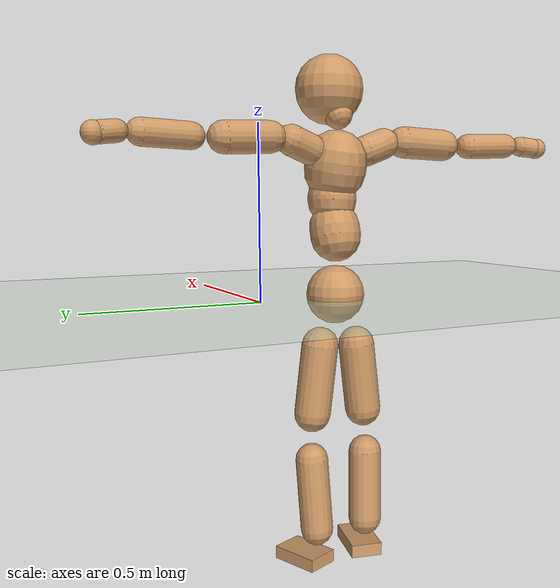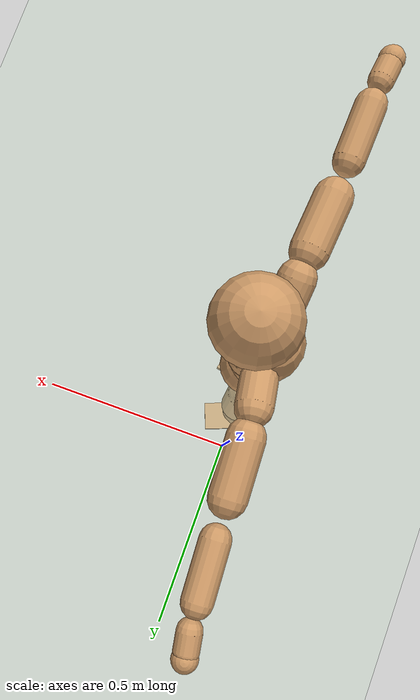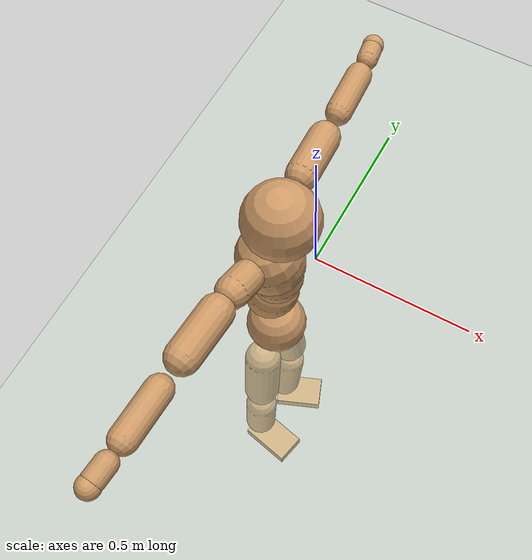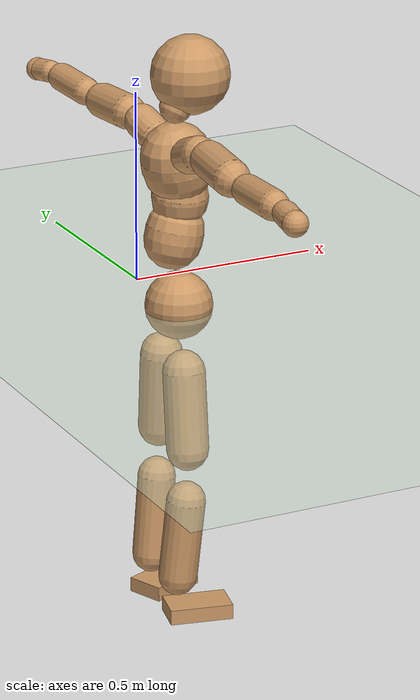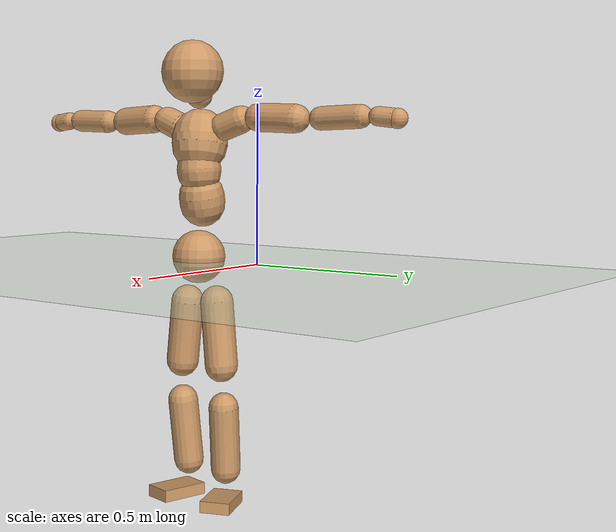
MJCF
<mujoco model="humanoid">
  <compiler coordinate="local" angle="radian"/>
  <default>
    <joint damping="0.0" armature="0.01" stiffness="0.0" limited="true"/>
    <geom conaffinity="1" condim="3" contype="7" margin="0.001" rgba="0.8 0.6 .4 1"/>
  </default>
  <asset>
    <texture type="skybox" builtin="gradient" rgb1=".4 .5 .6" rgb2="0 0 0" width="100" height="100"/>
    <texture builtin="flat" height="1278" mark="cross" markrgb="1 1 1" name="texgeom" random="0.01" rgb1="0.8 0.6 0.4" rgb2="0.8 0.6 0.4" type="cube" width="127"/>
    <texture builtin="checker" height="100" name="texplane" rgb1="0 0 0" rgb2="0.8 0.8 0.8" type="2d" width="100"/>
    <material name="MatPlane" reflectance="0.5" shininess="1" specular="1" texrepeat="60 60" texture="texplane"/>
    <material name="geom" texture="texgeom" texuniform="true"/>
  </asset>
  <worldbody>
    <light cutoff="100" diffuse="1 1 1" dir="-0 0 -1.3" directional="true" exponent="1" pos="0 0 1.3" specular=".1 .1 .1"/>
    <geom conaffinity="1" condim="3" name="floor" pos="0 0 0" rgba="0.8 0.9 0.8 1" size="100 100 .2" type="plane" material="MatPlane"/>
    <body name="Pelvis" pos="0.0004 -0.2403 0.0114">
      <freejoint name="Pelvis"/>
      <geom type="sphere" contype="1" conaffinity="1" density="500" size="0.0867" pos="0.0000 0.0000 0.0000" name="Pelvis"/>
      <body name="L_Hip" pos="-0.0203 0.0531 -0.078">
        <joint name="L_Hip_x" type="hinge" pos="0 0 0" axis="1 0 0" stiffness="800" damping="80" armature="0.02" range="-180.0000 180.0000"/>
        <joint name="L_Hip_y" type="hinge" pos="0 0 0" axis="0 1 0" stiffness="800" damping="80" armature="0.02" range="-180.0000 180.0000"/>
        <joint name="L_Hip_z" type="hinge" pos="0 0 0" axis="0 0 1" stiffness="800" damping="80" armature="0.02" range="-180.0000 180.0000"/>
        <geom type="capsule" contype="1" conaffinity="1" density="500" fromto="0.0015 0.0077 -0.0691 0.0062 0.0309 -0.2763" size="0.0542" name="L_Hip"/>
        <body name="L_Knee" pos="0.0077 0.0386 -0.3454">
          <joint name="L_Knee_x" type="hinge" pos="0 0 0" axis="1 0 0" stiffness="800" damping="80" armature="0.02" range="-180.0000 180.0000"/>
          <joint name="L_Knee_y" type="hinge" pos="0 0 0" axis="0 1 0" stiffness="800" damping="80" armature="0.02" range="-180.0000 180.0000"/>
          <joint name="L_Knee_z" type="hinge" pos="0 0 0" axis="0 0 1" stiffness="800" damping="80" armature="0.02" range="-180.0000 180.0000"/>
          <geom type="capsule" contype="1" conaffinity="1" density="500" fromto="-0.0067 -0.0023 -0.0709 -0.0267 -0.0091 -0.2836" size="0.0489" name="L_Knee"/>
          <body name="L_Ankle" pos="-0.0333 -0.0114 -0.3545">
            <joint name="L_Ankle_x" type="hinge" pos="0 0 0" axis="1 0 0" stiffness="800" damping="80" armature="0.02" range="-180.0000 180.0000"/>
            <joint name="L_Ankle_y" type="hinge" pos="0 0 0" axis="0 1 0" stiffness="800" damping="80" armature="0.02" range="-180.0000 180.0000"/>
            <joint name="L_Ankle_z" type="hinge" pos="0 0 0" axis="0 0 1" stiffness="800" damping="80" armature="0.02" range="-180.0000 180.0000"/>
            <geom type="box" contype="1" conaffinity="1" density="500" pos="0.0537 0.0214 -0.0264" size="0.0754 0.0493 0.019" quat="0.9821 0.0000 0.0000 0.1883" name="L_Ankle"/>
            <body name="L_Toe" pos="0.1074 0.0427 -0.0529">
              <joint name="L_Toe_x" type="hinge" pos="0 0 0" axis="1 0 0" stiffness="500" damping="50" armature="0.02" range="-180.0000 180.0000"/>
              <joint name="L_Toe_y" type="hinge" pos="0 0 0" axis="0 1 0" stiffness="500" damping="50" armature="0.02" range="-180.0000 180.0000"/>
              <joint name="L_Toe_z" type="hinge" pos="0 0 0" axis="0 0 1" stiffness="500" damping="50" armature="0.02" range="-180.0000 180.0000"/>
              <geom type="box" contype="1" conaffinity="1" density="500" pos="0.0000 0.0000 0.0275" size="0.001 0.0023 0.001" quat="0.9812 0.0000 0.0000 0.1929" name="L_Toe"/>
            </body>
          </body>
        </body>
      </body>
      <body name="R_Hip" pos="-0.0168 -0.0553 -0.0859">
        <joint name="R_Hip_x" type="hinge" pos="0 0 0" axis="1 0 0" stiffness="800" damping="80" armature="0.02" range="-180.0000 180.0000"/>
        <joint name="R_Hip_y" type="hinge" pos="0 0 0" axis="0 1 0" stiffness="800" damping="80" armature="0.02" range="-180.0000 180.0000"/>
        <joint name="R_Hip_z" type="hinge" pos="0 0 0" axis="0 0 1" stiffness="800" damping="80" armature="0.02" range="-180.0000 180.0000"/>
        <geom type="capsule" contype="1" conaffinity="1" density="500" fromto="-0.0005 -0.0079 -0.0677 -0.0018 -0.0315 -0.2708" size="0.054" name="R_Hip"/>
        <body name="R_Knee" pos="-0.0023 -0.0393 -0.3384">
          <joint name="R_Knee_x" type="hinge" pos="0 0 0" axis="1 0 0" stiffness="800" damping="80" armature="0.02" range="-180.0000 180.0000"/>
          <joint name="R_Knee_y" type="hinge" pos="0 0 0" axis="0 1 0" stiffness="800" damping="80" armature="0.02" range="-180.0000 180.0000"/>
          <joint name="R_Knee_z" type="hinge" pos="0 0 0" axis="0 0 1" stiffness="800" damping="80" armature="0.02" range="-180.0000 180.0000"/>
          <geom type="capsule" contype="1" conaffinity="1" density="500" fromto="-0.0062 0.0030 -0.0696 -0.0249 0.0122 -0.2783" size="0.05" name="R_Knee"/>
          <body name="R_Ankle" pos="-0.0311 0.0152 -0.3478">
            <joint name="R_Ankle_x" type="hinge" pos="0 0 0" axis="1 0 0" stiffness="800" damping="80" armature="0.02" range="-180.0000 180.0000"/>
            <joint name="R_Ankle_y" type="hinge" pos="0 0 0" axis="0 1 0" stiffness="800" damping="80" armature="0.02" range="-180.0000 180.0000"/>
            <joint name="R_Ankle_z" type="hinge" pos="0 0 0" axis="0 0 1" stiffness="800" damping="80" armature="0.02" range="-180.0000 180.0000"/>
            <geom type="box" contype="1" conaffinity="1" density="500" pos="0.0580 -0.0128 -0.0275" size="0.0816 0.0476 0.0196" quat="0.9941 0.0000 0.0000 -0.1083" name="R_Ankle"/>
            <body name="R_Toe" pos="0.1159 -0.0256 -0.0549">
              <joint name="R_Toe_x" type="hinge" pos="0 0 0" axis="1 0 0" stiffness="500" damping="50" armature="0.02" range="-180.0000 180.0000"/>
              <joint name="R_Toe_y" type="hinge" pos="0 0 0" axis="0 1 0" stiffness="500" damping="50" armature="0.02" range="-180.0000 180.0000"/>
              <joint name="R_Toe_z" type="hinge" pos="0 0 0" axis="0 0 1" stiffness="500" damping="50" armature="0.02" range="-180.0000 180.0000"/>
              <geom type="box" contype="1" conaffinity="1" density="500" pos="0.0000 0.0000 0.0300" size="0.0009 0.0023 0.0011" quat="0.9951 0.0000 0.0000 -0.0984" name="R_Toe"/>
            </body>
          </body>
        </body>
      </body>
      <body name="Torso" pos="-0.0259 0.0037 0.1167">
        <joint name="Torso_x" type="hinge" pos="0 0 0" axis="1 0 0" stiffness="1000" damping="100" armature="0.02" range="-180.0000 180.0000"/>
        <joint name="Torso_y" type="hinge" pos="0 0 0" axis="0 1 0" stiffness="1000" damping="100" armature="0.02" range="-180.0000 180.0000"/>
        <joint name="Torso_z" type="hinge" pos="0 0 0" axis="0 0 1" stiffness="1000" damping="100" armature="0.02" range="-180.0000 180.0000"/>
        <geom type="capsule" contype="1" conaffinity="1" density="500" fromto="0.0192 0.0031 0.0829 0.0128 0.0020 0.0553" size="0.074" name="Torso"/>
        <body name="Spine" pos="0.0319 0.0051 0.1381">
          <joint name="Spine_x" type="hinge" pos="0 0 0" axis="1 0 0" stiffness="1000" damping="100" armature="0.02" range="-180.0000 180.0000"/>
          <joint name="Spine_y" type="hinge" pos="0 0 0" axis="0 1 0" stiffness="1000" damping="100" armature="0.02" range="-180.0000 180.0000"/>
          <joint name="Spine_z" type="hinge" pos="0 0 0" axis="0 0 1" stiffness="1000" damping="100" armature="0.02" range="-180.0000 180.0000"/>
          <geom type="capsule" contype="1" conaffinity="1" density="500" fromto="0.0015 -0.0014 0.0331 0.0010 -0.0010 0.0221" size="0.0719" name="Spine"/>
          <body name="Chest" pos="0.0024 -0.0024 0.0552">
            <joint name="Chest_x" type="hinge" pos="0 0 0" axis="1 0 0" stiffness="1000" damping="100" armature="0.02" range="-180.0000 180.0000"/>
            <joint name="Chest_y" type="hinge" pos="0 0 0" axis="0 1 0" stiffness="1000" damping="100" armature="0.02" range="-180.0000 180.0000"/>
            <joint name="Chest_z" type="hinge" pos="0 0 0" axis="0 0 1" stiffness="1000" damping="100" armature="0.02" range="-180.0000 180.0000"/>
            <geom type="capsule" contype="1" conaffinity="1" density="500" fromto="-0.0151 -0.0053 0.0792 -0.0101 -0.0035 0.0528" size="0.0902" name="Chest"/>
            <body name="Neck" pos="-0.0285 -0.0119 0.1924">
              <joint name="Neck_x" type="hinge" pos="0 0 0" axis="1 0 0" stiffness="500" damping="50" armature="0.02" range="-180.0000 180.0000"/>
              <joint name="Neck_y" type="hinge" pos="0 0 0" axis="0 1 0" stiffness="500" damping="50" armature="0.02" range="-180.0000 180.0000"/>
              <joint name="Neck_z" type="hinge" pos="0 0 0" axis="0 0 1" stiffness="500" damping="50" armature="0.02" range="-180.0000 180.0000"/>
              <geom type="capsule" contype="1" conaffinity="1" density="500" fromto="0.0107 0.0018 0.0185 0.0429 0.0070 0.0742" size="0.0418" name="Neck"/>
              <body name="Head" pos="0.0536 0.0088 0.0927">
                <joint name="Head_x" type="hinge" pos="0 0 0" axis="1 0 0" stiffness="500" damping="50" armature="0.02" range="-180.0000 180.0000"/>
                <joint name="Head_y" type="hinge" pos="0 0 0" axis="0 1 0" stiffness="500" damping="50" armature="0.02" range="-180.0000 180.0000"/>
                <joint name="Head_z" type="hinge" pos="0 0 0" axis="0 0 1" stiffness="500" damping="50" armature="0.02" range="-180.0000 180.0000"/>
                <geom type="sphere" contype="1" conaffinity="1" density="500" size="0.1000" pos="0.0000 0.0000 0.0000" name="Head"/>
              </body>
            </body>
            <body name="L_Thorax" pos="-0.0226 0.0612 0.1014">
              <joint name="L_Thorax_x" type="hinge" pos="0 0 0" axis="1 0 0" stiffness="500" damping="50" armature="0.02" range="-180.0000 180.0000"/>
              <joint name="L_Thorax_y" type="hinge" pos="0 0 0" axis="0 1 0" stiffness="500" damping="50" armature="0.02" range="-180.0000 180.0000"/>
              <joint name="L_Thorax_z" type="hinge" pos="0 0 0" axis="0 0 1" stiffness="500" damping="50" armature="0.02" range="-180.0000 180.0000"/>
              <geom type="capsule" contype="1" conaffinity="1" density="500" fromto="-0.0031 0.0214 0.0077 -0.0123 0.0856 0.0309" size="0.0442" name="L_Thorax"/>
              <body name="L_Shoulder" pos="-0.0154 0.107 0.0387">
                <joint name="L_Shoulder_x" type="hinge" pos="0 0 0" axis="1 0 0" stiffness="500" damping="50" armature="0.02" range="-720.0000 720.0000"/>
                <joint name="L_Shoulder_y" type="hinge" pos="0 0 0" axis="0 1 0" stiffness="500" damping="50" armature="0.02" range="-720.0000 720.0000"/>
                <joint name="L_Shoulder_z" type="hinge" pos="0 0 0" axis="0 0 1" stiffness="500" damping="50" armature="0.02" range="-720.0000 720.0000"/>
                <geom type="capsule" contype="1" conaffinity="1" density="500" fromto="-0.0022 0.0452 -0.0019 -0.0088 0.1807 -0.0076" size="0.0448" name="L_Shoulder"/>
                <body name="L_Elbow" pos="-0.011 0.2259 -0.0095">
                  <joint name="L_Elbow_x" type="hinge" pos="0 0 0" axis="1 0 0" stiffness="500" damping="50" armature="0.02" range="-720.0000 720.0000"/>
                  <joint name="L_Elbow_y" type="hinge" pos="0 0 0" axis="0 1 0" stiffness="500" damping="50" armature="0.02" range="-720.0000 720.0000"/>
                  <joint name="L_Elbow_z" type="hinge" pos="0 0 0" axis="0 0 1" stiffness="500" damping="50" armature="0.02" range="-720.0000 720.0000"/>
                  <geom type="capsule" contype="1" conaffinity="1" density="500" fromto="-0.0024 0.0446 0.0014 -0.0096 0.1786 0.0055" size="0.0362" name="L_Elbow"/>
                  <body name="L_Wrist" pos="-0.0121 0.2232 0.0069">
                    <joint name="L_Wrist_x" type="hinge" pos="0 0 0" axis="1 0 0" stiffness="300" damping="30" armature="0.02" range="-180.0000 180.0000"/>
                    <joint name="L_Wrist_y" type="hinge" pos="0 0 0" axis="0 1 0" stiffness="300" damping="30" armature="0.02" range="-180.0000 180.0000"/>
                    <joint name="L_Wrist_z" type="hinge" pos="0 0 0" axis="0 0 1" stiffness="300" damping="30" armature="0.02" range="-180.0000 180.0000"/>
                    <geom type="capsule" contype="1" conaffinity="1" density="500" fromto="-0.0026 0.0146 -0.0018 -0.0104 0.0585 -0.0071" size="0.0292" name="L_Wrist"/>
                    <body name="L_Hand" pos="-0.013 0.0731 -0.0089">
                      <joint name="L_Hand_x" type="hinge" pos="0 0 0" axis="1 0 0" stiffness="300" damping="30" armature="0.02" range="-180.0000 180.0000"/>
                      <joint name="L_Hand_y" type="hinge" pos="0 0 0" axis="0 1 0" stiffness="300" damping="30" armature="0.02" range="-180.0000 180.0000"/>
                      <joint name="L_Hand_z" type="hinge" pos="0 0 0" axis="0 0 1" stiffness="300" damping="30" armature="0.02" range="-180.0000 180.0000"/>
                      <geom type="sphere" contype="1" conaffinity="1" density="500" size="0.0302" pos="0.0000 0.0000 0.0000" name="L_Hand"/>
                    </body>
                  </body>
                </body>
              </body>
            </body>
            <body name="R_Thorax" pos="-0.0244 -0.0756 0.102">
              <joint name="R_Thorax_x" type="hinge" pos="0 0 0" axis="1 0 0" stiffness="500" damping="50" armature="0.02" range="-180.0000 180.0000"/>
              <joint name="R_Thorax_y" type="hinge" pos="0 0 0" axis="0 1 0" stiffness="500" damping="50" armature="0.02" range="-180.0000 180.0000"/>
              <joint name="R_Thorax_z" type="hinge" pos="0 0 0" axis="0 0 1" stiffness="500" damping="50" armature="0.02" range="-180.0000 180.0000"/>
              <geom type="capsule" contype="1" conaffinity="1" density="500" fromto="-0.0012 -0.0202 0.0077 -0.0047 -0.0809 0.0309" size="0.0452" name="R_Thorax"/>
              <body name="R_Shoulder" pos="-0.0059 -0.1011 0.0386">
                <joint name="R_Shoulder_x" type="hinge" pos="0 0 0" axis="1 0 0" stiffness="500" damping="50" armature="0.02" range="-720.0000 720.0000"/>
                <joint name="R_Shoulder_y" type="hinge" pos="0 0 0" axis="0 1 0" stiffness="500" damping="50" armature="0.02" range="-720.0000 720.0000"/>
                <joint name="R_Shoulder_z" type="hinge" pos="0 0 0" axis="0 0 1" stiffness="500" damping="50" armature="0.02" range="-720.0000 720.0000"/>
                <geom type="capsule" contype="1" conaffinity="1" density="500" fromto="-0.0037 -0.0457 -0.0018 -0.0146 -0.1827 -0.0073" size="0.0466" name="R_Shoulder"/>
                <body name="R_Elbow" pos="-0.0183 -0.2284 -0.0092">
                  <joint name="R_Elbow_x" type="hinge" pos="0 0 0" axis="1 0 0" stiffness="500" damping="50" armature="0.02" range="-720.0000 720.0000"/>
                  <joint name="R_Elbow_y" type="hinge" pos="0 0 0" axis="0 1 0" stiffness="500" damping="50" armature="0.02" range="-720.0000 720.0000"/>
                  <joint name="R_Elbow_z" type="hinge" pos="0 0 0" axis="0 0 1" stiffness="500" damping="50" armature="0.02" range="-720.0000 720.0000"/>
                  <geom type="capsule" contype="1" conaffinity="1" density="500" fromto="-0.0016 -0.0468 0.0018 -0.0063 -0.1873 0.0070" size="0.0378" name="R_Elbow"/>
                  <body name="R_Wrist" pos="-0.0079 -0.2341 0.0088">
                    <joint name="R_Wrist_x" type="hinge" pos="0 0 0" axis="1 0 0" stiffness="300" damping="30" armature="0.02" range="-180.0000 180.0000"/>
                    <joint name="R_Wrist_y" type="hinge" pos="0 0 0" axis="0 1 0" stiffness="300" damping="30" armature="0.02" range="-180.0000 180.0000"/>
                    <joint name="R_Wrist_z" type="hinge" pos="0 0 0" axis="0 0 1" stiffness="300" damping="30" armature="0.02" range="-180.0000 180.0000"/>
                    <geom type="capsule" contype="1" conaffinity="1" density="500" fromto="-0.0017 -0.0155 -0.0015 -0.0069 -0.0620 -0.0058" size="0.0308" name="R_Wrist"/>
                    <body name="R_Hand" pos="-0.0086 -0.0776 -0.0073">
                      <joint name="R_Hand_x" type="hinge" pos="0 0 0" axis="1 0 0" stiffness="300" damping="30" armature="0.02" range="-180.0000 180.0000"/>
                      <joint name="R_Hand_y" type="hinge" pos="0 0 0" axis="0 1 0" stiffness="300" damping="30" armature="0.02" range="-180.0000 180.0000"/>
                      <joint name="R_Hand_z" type="hinge" pos="0 0 0" axis="0 0 1" stiffness="300" damping="30" armature="0.02" range="-180.0000 180.0000"/>
                      <geom type="sphere" contype="1" conaffinity="1" density="500" size="0.0317" pos="0.0000 0.0000 0.0000" name="R_Hand"/>
                    </body>
                  </body>
                </body>
              </body>
            </body>
          </body>
        </body>
      </body>
    </body>
  </worldbody>
  <actuator>
    <motor name="L_Hip_x" joint="L_Hip_x" gear="500"/>
    <motor name="L_Hip_y" joint="L_Hip_y" gear="500"/>
    <motor name="L_Hip_z" joint="L_Hip_z" gear="500"/>
    <motor name="L_Knee_x" joint="L_Knee_x" gear="500"/>
    <motor name="L_Knee_y" joint="L_Knee_y" gear="500"/>
    <motor name="L_Knee_z" joint="L_Knee_z" gear="500"/>
    <motor name="L_Ankle_x" joint="L_Ankle_x" gear="500"/>
    <motor name="L_Ankle_y" joint="L_Ankle_y" gear="500"/>
    <motor name="L_Ankle_z" joint="L_Ankle_z" gear="500"/>
    <motor name="L_Toe_x" joint="L_Toe_x" gear="500"/>
    <motor name="L_Toe_y" joint="L_Toe_y" gear="500"/>
    <motor name="L_Toe_z" joint="L_Toe_z" gear="500"/>
    <motor name="R_Hip_x" joint="R_Hip_x" gear="500"/>
    <motor name="R_Hip_y" joint="R_Hip_y" gear="500"/>
    <motor name="R_Hip_z" joint="R_Hip_z" gear="500"/>
    <motor name="R_Knee_x" joint="R_Knee_x" gear="500"/>
    <motor name="R_Knee_y" joint="R_Knee_y" gear="500"/>
    <motor name="R_Knee_z" joint="R_Knee_z" gear="500"/>
    <motor name="R_Ankle_x" joint="R_Ankle_x" gear="500"/>
    <motor name="R_Ankle_y" joint="R_Ankle_y" gear="500"/>
    <motor name="R_Ankle_z" joint="R_Ankle_z" gear="500"/>
    <motor name="R_Toe_x" joint="R_Toe_x" gear="500"/>
    <motor name="R_Toe_y" joint="R_Toe_y" gear="500"/>
    <motor name="R_Toe_z" joint="R_Toe_z" gear="500"/>
    <motor name="Torso_x" joint="Torso_x" gear="500"/>
    <motor name="Torso_y" joint="Torso_y" gear="500"/>
    <motor name="Torso_z" joint="Torso_z" gear="500"/>
    <motor name="Spine_x" joint="Spine_x" gear="500"/>
    <motor name="Spine_y" joint="Spine_y" gear="500"/>
    <motor name="Spine_z" joint="Spine_z" gear="500"/>
    <motor name="Chest_x" joint="Chest_x" gear="500"/>
    <motor name="Chest_y" joint="Chest_y" gear="500"/>
    <motor name="Chest_z" joint="Chest_z" gear="500"/>
    <motor name="Neck_x" joint="Neck_x" gear="500"/>
    <motor name="Neck_y" joint="Neck_y" gear="500"/>
    <motor name="Neck_z" joint="Neck_z" gear="500"/>
    <motor name="Head_x" joint="Head_x" gear="500"/>
    <motor name="Head_y" joint="Head_y" gear="500"/>
    <motor name="Head_z" joint="Head_z" gear="500"/>
    <motor name="L_Thorax_x" joint="L_Thorax_x" gear="500"/>
    <motor name="L_Thorax_y" joint="L_Thorax_y" gear="500"/>
    <motor name="L_Thorax_z" joint="L_Thorax_z" gear="500"/>
    <motor name="L_Shoulder_x" joint="L_Shoulder_x" gear="500"/>
    <motor name="L_Shoulder_y" joint="L_Shoulder_y" gear="500"/>
    <motor name="L_Shoulder_z" joint="L_Shoulder_z" gear="500"/>
    <motor name="L_Elbow_x" joint="L_Elbow_x" gear="500"/>
    <motor name="L_Elbow_y" joint="L_Elbow_y" gear="500"/>
    <motor name="L_Elbow_z" joint="L_Elbow_z" gear="500"/>
    <motor name="L_Wrist_x" joint="L_Wrist_x" gear="500"/>
    <motor name="L_Wrist_y" joint="L_Wrist_y" gear="500"/>
    <motor name="L_Wrist_z" joint="L_Wrist_z" gear="500"/>
    <motor name="L_Hand_x" joint="L_Hand_x" gear="500"/>
    <motor name="L_Hand_y" joint="L_Hand_y" gear="500"/>
    <motor name="L_Hand_z" joint="L_Hand_z" gear="500"/>
    <motor name="R_Thorax_x" joint="R_Thorax_x" gear="500"/>
    <motor name="R_Thorax_y" joint="R_Thorax_y" gear="500"/>
    <motor name="R_Thorax_z" joint="R_Thorax_z" gear="500"/>
    <motor name="R_Shoulder_x" joint="R_Shoulder_x" gear="500"/>
    <motor name="R_Shoulder_y" joint="R_Shoulder_y" gear="500"/>
    <motor name="R_Shoulder_z" joint="R_Shoulder_z" gear="500"/>
    <motor name="R_Elbow_x" joint="R_Elbow_x" gear="500"/>
    <motor name="R_Elbow_y" joint="R_Elbow_y" gear="500"/>
    <motor name="R_Elbow_z" joint="R_Elbow_z" gear="500"/>
    <motor name="R_Wrist_x" joint="R_Wrist_x" gear="500"/>
    <motor name="R_Wrist_y" joint="R_Wrist_y" gear="500"/>
    <motor name="R_Wrist_z" joint="R_Wrist_z" gear="500"/>
    <motor name="R_Hand_x" joint="R_Hand_x" gear="500"/>
    <motor name="R_Hand_y" joint="R_Hand_y" gear="500"/>
    <motor name="R_Hand_z" joint="R_Hand_z" gear="500"/>
  </actuator>
  <contact>
    <exclude body1="Torso" body2="Chest"/>
    <exclude body1="Head" body2="Chest"/>
    <exclude body1="R_Knee" body2="R_Toe"/>
    <exclude body1="R_Knee" body2="L_Ankle"/>
    <exclude body1="R_Knee" body2="L_Toe"/>
    <exclude body1="L_Knee" body2="L_Toe"/>
    <exclude body1="L_Knee" body2="R_Ankle"/>
    <exclude body1="L_Knee" body2="R_Toe"/>
    <exclude body1="L_Shoulder" body2="Chest"/>
    <exclude body1="R_Shoulder" body2="Chest"/>
  </contact>
  <sensor/>
  <size njmax="700" nconmax="700"/>
</mujoco>
